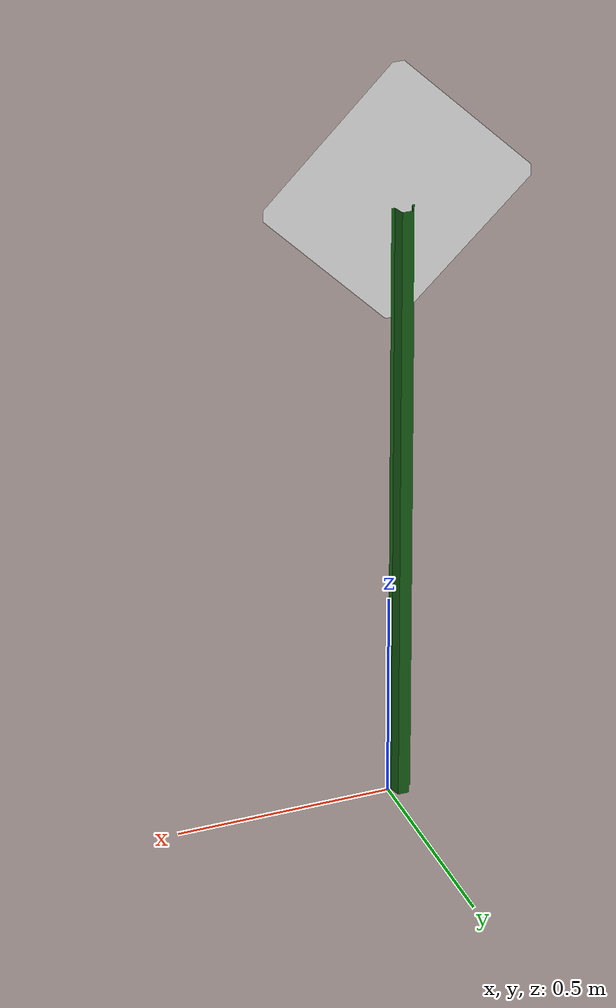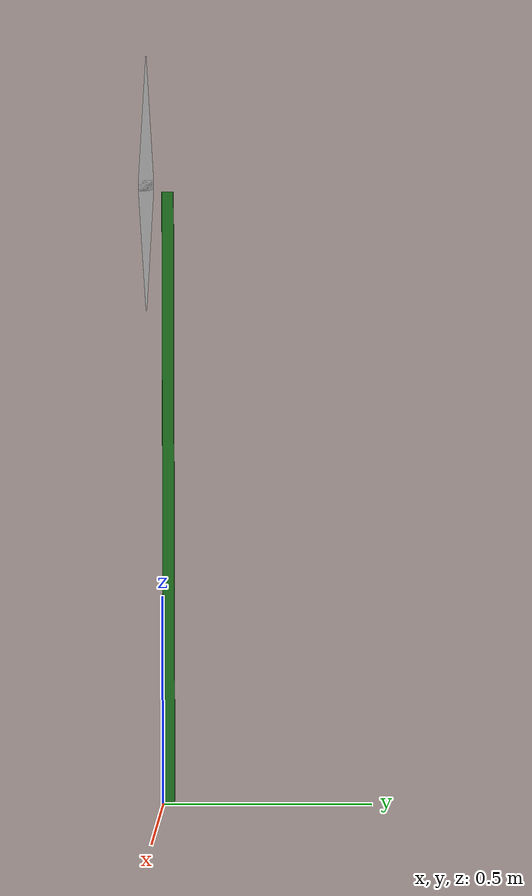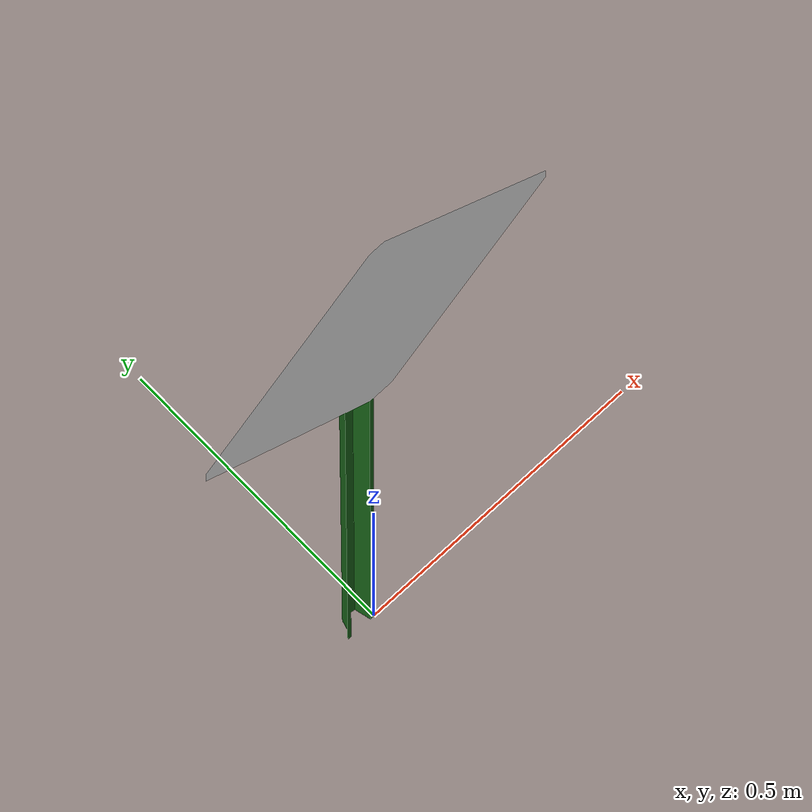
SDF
<?xml version='1.0'?>
<sdf version='1.6'>
  <model name='diamond_sign'>
    <static>true</static>
    <link name="diamond_sign_link">
        <visual name="diamond_sign_visual">
            <geometry>
            <mesh>
                <scale>0.6 0.6 0.6</scale>
                <uri>model://diamond_sign/meshes/model.dae</uri>
            </mesh>
            </geometry>
            <material>
            <script>
                <uri>model://diamond_sign/materials/scripts</uri>
                <uri>model://diamond_sign/materials/textures</uri>
                <name>diamond_sign</name>
            </script>
            </material>
        </visual>
        <collision name="diamond_sign_collision">
            <geometry>
            <mesh>
                <scale>0.6 0.6 0.6</scale>
                <uri>model://diamond_sign/meshes/model.dae</uri>
            </mesh>
            </geometry>
        </collision>
    </link>
  </model>
</sdf>
